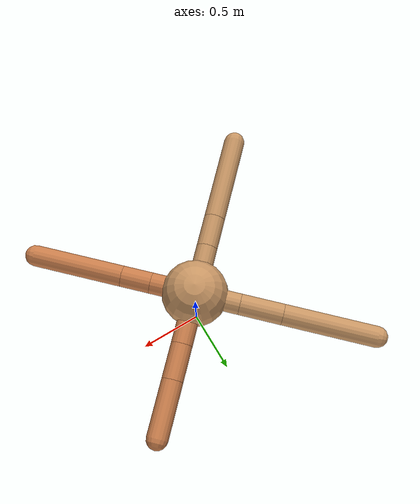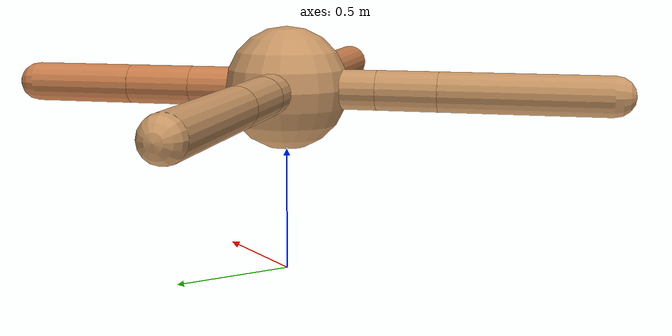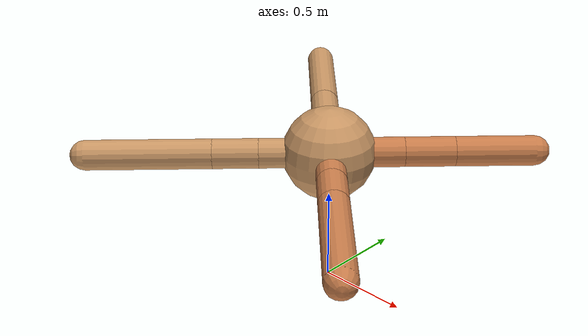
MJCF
<mujoco model="ant">
  <compiler angle="degree" coordinate="local" inertiafromgeom="true" />
  <option integrator="RK4" timestep="0.01" />
  <custom>
    <numeric data="0.0 0.0 0.55 1.0 0.0 0.0 0.0 0.0 1.0 0.0 -1.0 0.0 -1.0 0.0 1.0" name="init_qpos" />
  </custom>
  <default>
    <joint armature="1" damping="1" limited="true" />
    <geom conaffinity="0" condim="3" density="5.0" friction="1.5 0.1 0.1" margin="0.01" rgba="0.8 0.6 0.4 1" />
  </default>
  <worldbody>
    <body name="torso" pos="0 0 0.75">
      <geom name="torso_geom" pos="0 0 0" size="0.25" type="sphere" />

      <body name="front_left_leg" pos="0 0 0">
        <geom fromto="0.0 0.0 0.0 0.2820299562942769 0.2820299562942769 0.0" name="aux_1_geom" size="0.08" type="capsule" rgba=".8 .5 .3 1" />
        <body name="aux_1" pos="0.2820299562942769 0.2820299562942769 0.0">
          <joint axis="0 0 1" name="hip_1" pos="0.0 0.0 0.0" range="-40 40" type="hinge" />
          <geom fromto="0.0 0.0 0.0 0.18970286094756147 0.18970286094756147 0.0" name="left_leg_geom" size="0.08" type="capsule" rgba=".8 .5 .3 1" />
          <body pos="0.18970286094756147 0.18970286094756147 0.0" name="front_left_foot">
            <joint axis="-1 1 0" name="ankle_1" pos="0.0 0.0 0.0" range="30 100" type="hinge" />
            <geom fromto="0.0 0.0 0.0 0.29925601345248887 0.29925601345248887 0.0" name="left_ankle_geom" size="0.08" type="capsule" rgba=".8 .5 .3 1" />
          </body>
        </body>
      </body>
      <body name="front_right_leg" pos="0 0 0">
        <geom fromto="0.0 0.0 0.0 -0.24261000135940627 0.24261000135940627 0.0" name="aux_2_geom" size="0.08" type="capsule" />
        <body name="aux_2" pos="-0.24261000135940627 0.24261000135940627 0.0">
          <joint axis="0 0 1" name="hip_2" pos="0.0 0.0 0.0" range="-40 40" type="hinge" />
          <geom fromto="0.0 0.0 0.0 -0.229924603070587 0.229924603070587 0.0" name="right_leg_geom" size="0.08" type="capsule" />
          <body pos="-0.229924603070587 0.229924603070587 0.0" name="front_right_foot">
            <joint axis="1 1 0" name="ankle_2" pos="0.0 0.0 0.0" range="-100 -30" type="hinge" />
            <geom fromto="0.0 0.0 0.0 -0.4957054940430153 0.4957054940430153 0.0" name="right_ankle_geom" size="0.08" type="capsule" />
          </body>
        </body>
      </body>
      <body name="left_back_leg" pos="0 0 0">
        <geom fromto="0.0 0.0 0.0 -0.26307813562192534 -0.26307813562192534 0.0" name="aux_3_geom" size="0.08" type="capsule" />
        <body name="aux_3" pos="-0.26307813562192534 -0.26307813562192534 0.0">
          <joint axis="0 0 1" name="hip_3" pos="0.0 0.0 0.0" range="-40 40" type="hinge" />
          <geom fromto="0.0 0.0 0.0 -0.1729613166846436 -0.1729613166846436 0.0" name="back_leg_geom" size="0.08" type="capsule" />
          <body pos="-0.1729613166846436 -0.1729613166846436 0.0" name="left_back_foot">
            <joint axis="-1 1 0" name="ankle_3" pos="0.0 0.0 0.0" range="-100 -30" type="hinge" />
            <geom fromto="0.0 0.0 0.0 -0.4732640551718286 -0.4732640551718286 0.0" name="third_ankle_geom" size="0.08" type="capsule" />
          </body>
        </body>
      </body>
      <body name="right_back_leg" pos="0 0 0">
        <geom fromto="0.0 0.0 0.0 0.23927081683024376 -0.23927081683024376 0.0" name="aux_4_geom" size="0.08" type="capsule" rgba=".8 .5 .3 1" />
        <body name="aux_4" pos="0.23927081683024376 -0.23927081683024376 0.0">
          <joint axis="0 0 1" name="hip_4" pos="0.0 0.0 0.0" range="-40 40" type="hinge" />
          <geom fromto="0.0 0.0 0.0 0.15790426307890484 -0.15790426307890484 0.0" name="rightback_leg_geom" size="0.08" type="capsule" rgba=".8 .5 .3 1" />
          <body pos="0.15790426307890484 -0.15790426307890484 0.0" name="right_back_foot">
            <joint axis="1 1 0" name="ankle_4" pos="0.0 0.0 0.0" range="30 100" type="hinge" />
            <geom fromto="0.0 0.0 0.0 0.47945739557128153 -0.47945739557128153 0.0" name="fourth_ankle_geom" size="0.08" type="capsule" rgba=".8 .5 .3 1" />
          </body>
        </body>
      </body>
    </body>
  </worldbody>
  <actuator>
    <motor ctrllimited="true" ctrlrange="-1.0 1.0" joint="hip_4" gear="150" />
    <motor ctrllimited="true" ctrlrange="-1.0 1.0" joint="ankle_4" gear="150" />
    <motor ctrllimited="true" ctrlrange="-1.0 1.0" joint="hip_1" gear="150" />
    <motor ctrllimited="true" ctrlrange="-1.0 1.0" joint="ankle_1" gear="150" />
    <motor ctrllimited="true" ctrlrange="-1.0 1.0" joint="hip_2" gear="150" />
    <motor ctrllimited="true" ctrlrange="-1.0 1.0" joint="ankle_2" gear="150" />
    <motor ctrllimited="true" ctrlrange="-1.0 1.0" joint="hip_3" gear="150" />
    <motor ctrllimited="true" ctrlrange="-1.0 1.0" joint="ankle_3" gear="150" />
  </actuator>
</mujoco>
